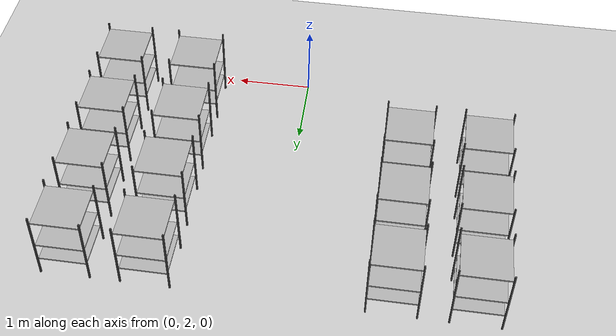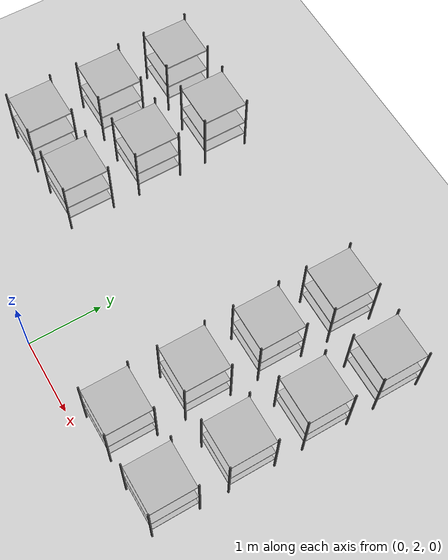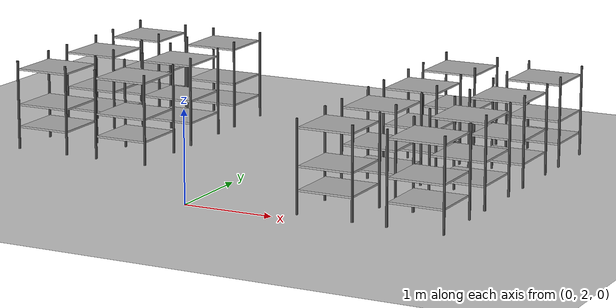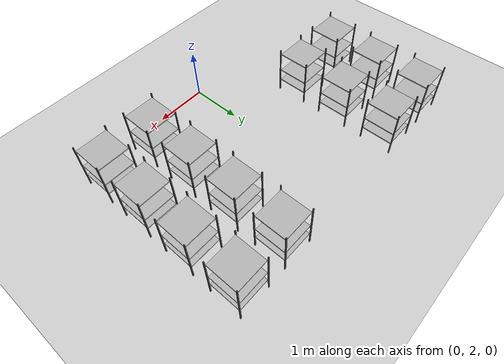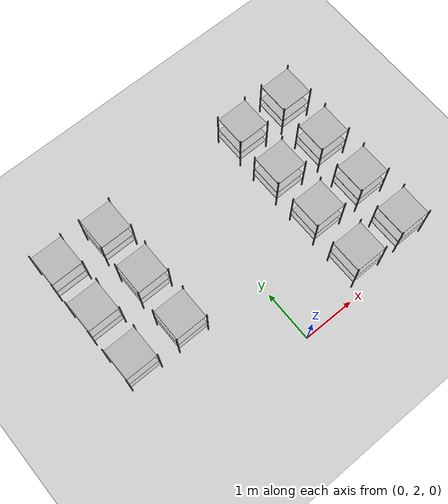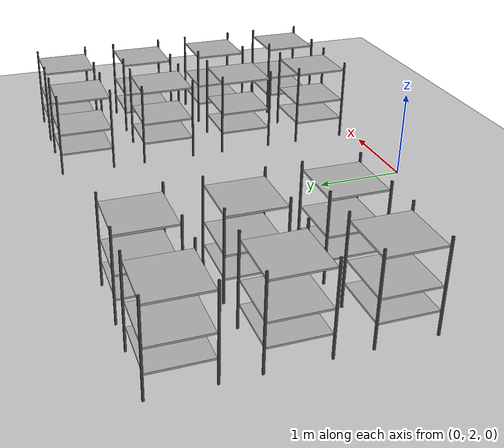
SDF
<sdf version="1.7">
 <world name="default">
  <model name="ground_plane">
   <static>1</static>
   <link name="link">
    <collision name="collision">
     <geometry><plane><normal>0 0 1</normal><size>100 100</size></plane></geometry>
     <surface><friction><ode><mu>100</mu><mu2>50</mu2></ode></friction></surface>
    </collision>
    <visual name="visual">
     <cast_shadows>0</cast_shadows>
     <geometry><plane><normal>0 0 1</normal><size>100 100</size></plane></geometry>
     <material>
      <script><uri>file://media/materials/scripts/gazebo.material</uri><name>Gazebo/Grey</name></script>
     </material>
    </visual>
   </link>
  </model>
  <model name="simple_shelf_4">
   <link name="link">
    <visual name="bottom_shelf_visual">
     <geometry><box><size>0.6 0.6 0.02</size></box></geometry>
     <pose>0 0 0.25 0 -0 0</pose>
     <material><ambient>0.6 0.6 0.6 1</ambient><diffuse>0.7 0.7 0.7 1</diffuse></material>
    </visual>
    <collision name="bottom_shelf_collision">
     <geometry><box><size>0.6 0.6 0.02</size></box></geometry>
     <pose>0 0 0.25 0 -0 0</pose>
    </collision>
    <visual name="middle_shelf_visual">
     <geometry><box><size>0.6 0.6 0.02</size></box></geometry>
     <pose>0 0 0.5 0 -0 0</pose>
     <material><ambient>0.6 0.6 0.6 1</ambient><diffuse>0.7 0.7 0.7 1</diffuse></material>
    </visual>
    <collision name="middle_shelf_collision">
     <geometry><box><size>0.6 0.6 0.02</size></box></geometry>
     <pose>0 0 0.5 0 -0 0</pose>
    </collision>
    <visual name="top_shelf_visual">
     <geometry><box><size>0.6 0.6 0.02</size></box></geometry>
     <pose>0 0 0.9 0 -0 0</pose>
     <material><ambient>0.6 0.6 0.6 1</ambient><diffuse>0.7 0.7 0.7 1</diffuse></material>
    </visual>
    <collision name="top_shelf_collision">
     <geometry><box><size>0.6 0.6 0.02</size></box></geometry>
     <pose>0 0 0.9 0 -0 0</pose>
    </collision>
    <visual name="left_support_visual">
     <geometry><box><size>0.02 0.02 1</size></box></geometry>
     <pose>-0.31 -0.31 0.5 0 -0 0</pose>
     <material><ambient>0.3 0.3 0.3 1</ambient><diffuse>0.3 0.3 0.3 1</diffuse></material>
    </visual>
    <collision name="left_support_collision">
     <geometry><box><size>0.02 0.02 1</size></box></geometry>
     <pose>-0.31 -0.31 0.5 0 -0 0</pose>
    </collision>
    <visual name="right_support_visual">
     <geometry><box><size>0.02 0.02 1</size></box></geometry>
     <pose>0.31 -0.31 0.5 0 -0 0</pose>
     <material><ambient>0.3 0.3 0.3 1</ambient><diffuse>0.3 0.3 0.3 1</diffuse></material>
    </visual>
    <collision name="right_support_collision">
     <geometry><box><size>0.02 0.02 1</size></box></geometry>
     <pose>0.31 -0.31 0.5 0 -0 0</pose>
    </collision>
    <visual name="front_left_support_visual">
     <geometry><box><size>0.02 0.02 1</size></box></geometry>
     <pose>-0.31 0.31 0.5 0 -0 0</pose>
     <material><ambient>0.3 0.3 0.3 1</ambient><diffuse>0.3 0.3 0.3 1</diffuse></material>
    </visual>
    <collision name="front_left_support_collision">
     <geometry><box><size>0.02 0.02 1</size></box></geometry>
     <pose>-0.31 0.31 0.5 0 -0 0</pose>
    </collision>
    <visual name="front_right_support_visual">
     <geometry><box><size>0.02 0.02 1</size></box></geometry>
     <pose>0.31 0.31 0.5 0 -0 0</pose>
     <material><ambient>0.3 0.3 0.3 1</ambient><diffuse>0.3 0.3 0.3 1</diffuse></material>
    </visual>
    <collision name="front_right_support_collision">
     <geometry><box><size>0.02 0.02 1</size></box></geometry>
     <pose>0.31 0.31 0.5 0 -0 0</pose>
    </collision>
    <inertial>
     <inertia><ixx>1</ixx><ixy>0</ixy><ixz>0</ixz><iyy>1</iyy><iyz>0</iyz><izz>1</izz></inertia>
     <mass>1</mass>
    </inertial>
   </link>
   <pose>-1.5 3.5 -1e-06 -1e-06 -1e-06 0</pose>
  </model>
  <model name="simple_shelf_5">
   <link name="link">
    <visual name="bottom_shelf_visual">
     <geometry><box><size>0.6 0.6 0.02</size></box></geometry>
     <pose>0 0 0.25 0 -0 0</pose>
     <material><ambient>0.6 0.6 0.6 1</ambient><diffuse>0.7 0.7 0.7 1</diffuse></material>
    </visual>
    <collision name="bottom_shelf_collision">
     <geometry><box><size>0.6 0.6 0.02</size></box></geometry>
     <pose>0 0 0.25 0 -0 0</pose>
    </collision>
    <visual name="middle_shelf_visual">
     <geometry><box><size>0.6 0.6 0.02</size></box></geometry>
     <pose>0 0 0.5 0 -0 0</pose>
     <material><ambient>0.6 0.6 0.6 1</ambient><diffuse>0.7 0.7 0.7 1</diffuse></material>
    </visual>
    <collision name="middle_shelf_collision">
     <geometry><box><size>0.6 0.6 0.02</size></box></geometry>
     <pose>0 0 0.5 0 -0 0</pose>
    </collision>
    <visual name="top_shelf_visual">
     <geometry><box><size>0.6 0.6 0.02</size></box></geometry>
     <pose>0 0 0.9 0 -0 0</pose>
     <material><ambient>0.6 0.6 0.6 1</ambient><diffuse>0.7 0.7 0.7 1</diffuse></material>
    </visual>
    <collision name="top_shelf_collision">
     <geometry><box><size>0.6 0.6 0.02</size></box></geometry>
     <pose>0 0 0.9 0 -0 0</pose>
    </collision>
    <visual name="left_support_visual">
     <geometry><box><size>0.02 0.02 1</size></box></geometry>
     <pose>-0.31 -0.31 0.5 0 -0 0</pose>
     <material><ambient>0.3 0.3 0.3 1</ambient><diffuse>0.3 0.3 0.3 1</diffuse></material>
    </visual>
    <collision name="left_support_collision">
     <geometry><box><size>0.02 0.02 1</size></box></geometry>
     <pose>-0.31 -0.31 0.5 0 -0 0</pose>
    </collision>
    <visual name="right_support_visual">
     <geometry><box><size>0.02 0.02 1</size></box></geometry>
     <pose>0.31 -0.31 0.5 0 -0 0</pose>
     <material><ambient>0.3 0.3 0.3 1</ambient><diffuse>0.3 0.3 0.3 1</diffuse></material>
    </visual>
    <collision name="right_support_collision">
     <geometry><box><size>0.02 0.02 1</size></box></geometry>
     <pose>0.31 -0.31 0.5 0 -0 0</pose>
    </collision>
    <visual name="front_left_support_visual">
     <geometry><box><size>0.02 0.02 1</size></box></geometry>
     <pose>-0.31 0.31 0.5 0 -0 0</pose>
     <material><ambient>0.3 0.3 0.3 1</ambient><diffuse>0.3 0.3 0.3 1</diffuse></material>
    </visual>
    <collision name="front_left_support_collision">
     <geometry><box><size>0.02 0.02 1</size></box></geometry>
     <pose>-0.31 0.31 0.5 0 -0 0</pose>
    </collision>
    <visual name="front_right_support_visual">
     <geometry><box><size>0.02 0.02 1</size></box></geometry>
     <pose>0.31 0.31 0.5 0 -0 0</pose>
     <material><ambient>0.3 0.3 0.3 1</ambient><diffuse>0.3 0.3 0.3 1</diffuse></material>
    </visual>
    <collision name="front_right_support_collision">
     <geometry><box><size>0.02 0.02 1</size></box></geometry>
     <pose>0.31 0.31 0.5 0 -0 0</pose>
    </collision>
    <inertial>
     <inertia><ixx>1</ixx><ixy>0</ixy><ixz>0</ixz><iyy>1</iyy><iyz>0</iyz><izz>1</izz></inertia>
     <mass>1</mass>
    </inertial>
   </link>
   <pose>-1.5 4.5 -1e-06 -1e-06 -1e-06 0</pose>
  </model>
  <model name="simple_shelf_6">
   <link name="link">
    <visual name="bottom_shelf_visual">
     <geometry><box><size>0.6 0.6 0.02</size></box></geometry>
     <pose>0 0 0.25 0 -0 0</pose>
     <material><ambient>0.6 0.6 0.6 1</ambient><diffuse>0.7 0.7 0.7 1</diffuse></material>
    </visual>
    <collision name="bottom_shelf_collision">
     <geometry><box><size>0.6 0.6 0.02</size></box></geometry>
     <pose>0 0 0.25 0 -0 0</pose>
    </collision>
    <visual name="middle_shelf_visual">
     <geometry><box><size>0.6 0.6 0.02</size></box></geometry>
     <pose>0 0 0.5 0 -0 0</pose>
     <material><ambient>0.6 0.6 0.6 1</ambient><diffuse>0.7 0.7 0.7 1</diffuse></material>
    </visual>
    <collision name="middle_shelf_collision">
     <geometry><box><size>0.6 0.6 0.02</size></box></geometry>
     <pose>0 0 0.5 0 -0 0</pose>
    </collision>
    <visual name="top_shelf_visual">
     <geometry><box><size>0.6 0.6 0.02</size></box></geometry>
     <pose>0 0 0.9 0 -0 0</pose>
     <material><ambient>0.6 0.6 0.6 1</ambient><diffuse>0.7 0.7 0.7 1</diffuse></material>
    </visual>
    <collision name="top_shelf_collision">
     <geometry><box><size>0.6 0.6 0.02</size></box></geometry>
     <pose>0 0 0.9 0 -0 0</pose>
    </collision>
    <visual name="left_support_visual">
     <geometry><box><size>0.02 0.02 1</size></box></geometry>
     <pose>-0.31 -0.31 0.5 0 -0 0</pose>
     <material><ambient>0.3 0.3 0.3 1</ambient><diffuse>0.3 0.3 0.3 1</diffuse></material>
    </visual>
    <collision name="left_support_collision">
     <geometry><box><size>0.02 0.02 1</size></box></geometry>
     <pose>-0.31 -0.31 0.5 0 -0 0</pose>
    </collision>
    <visual name="right_support_visual">
     <geometry><box><size>0.02 0.02 1</size></box></geometry>
     <pose>0.31 -0.31 0.5 0 -0 0</pose>
     <material><ambient>0.3 0.3 0.3 1</ambient><diffuse>0.3 0.3 0.3 1</diffuse></material>
    </visual>
    <collision name="right_support_collision">
     <geometry><box><size>0.02 0.02 1</size></box></geometry>
     <pose>0.31 -0.31 0.5 0 -0 0</pose>
    </collision>
    <visual name="front_left_support_visual">
     <geometry><box><size>0.02 0.02 1</size></box></geometry>
     <pose>-0.31 0.31 0.5 0 -0 0</pose>
     <material><ambient>0.3 0.3 0.3 1</ambient><diffuse>0.3 0.3 0.3 1</diffuse></material>
    </visual>
    <collision name="front_left_support_collision">
     <geometry><box><size>0.02 0.02 1</size></box></geometry>
     <pose>-0.31 0.31 0.5 0 -0 0</pose>
    </collision>
    <visual name="front_right_support_visual">
     <geometry><box><size>0.02 0.02 1</size></box></geometry>
     <pose>0.31 0.31 0.5 0 -0 0</pose>
     <material><ambient>0.3 0.3 0.3 1</ambient><diffuse>0.3 0.3 0.3 1</diffuse></material>
    </visual>
    <collision name="front_right_support_collision">
     <geometry><box><size>0.02 0.02 1</size></box></geometry>
     <pose>0.31 0.31 0.5 0 -0 0</pose>
    </collision>
    <inertial>
     <inertia><ixx>1</ixx><ixy>0</ixy><ixz>0</ixz><iyy>1</iyy><iyz>0</iyz><izz>1</izz></inertia>
     <mass>1</mass>
    </inertial>
   </link>
   <pose>-1.5 5.5 -1e-06 -1e-06 -1e-06 0</pose>
  </model>
  <model name="simple_shelf_8">
   <link name="link">
    <visual name="bottom_shelf_visual">
     <geometry><box><size>0.6 0.6 0.02</size></box></geometry>
     <pose>0 0 0.25 0 -0 0</pose>
     <material><ambient>0.6 0.6 0.6 1</ambient><diffuse>0.7 0.7 0.7 1</diffuse></material>
    </visual>
    <collision name="bottom_shelf_collision">
     <geometry><box><size>0.6 0.6 0.02</size></box></geometry>
     <pose>0 0 0.25 0 -0 0</pose>
    </collision>
    <visual name="middle_shelf_visual">
     <geometry><box><size>0.6 0.6 0.02</size></box></geometry>
     <pose>0 0 0.5 0 -0 0</pose>
     <material><ambient>0.6 0.6 0.6 1</ambient><diffuse>0.7 0.7 0.7 1</diffuse></material>
    </visual>
    <collision name="middle_shelf_collision">
     <geometry><box><size>0.6 0.6 0.02</size></box></geometry>
     <pose>0 0 0.5 0 -0 0</pose>
    </collision>
    <visual name="top_shelf_visual">
     <geometry><box><size>0.6 0.6 0.02</size></box></geometry>
     <pose>0 0 0.9 0 -0 0</pose>
     <material><ambient>0.6 0.6 0.6 1</ambient><diffuse>0.7 0.7 0.7 1</diffuse></material>
    </visual>
    <collision name="top_shelf_collision">
     <geometry><box><size>0.6 0.6 0.02</size></box></geometry>
     <pose>0 0 0.9 0 -0 0</pose>
    </collision>
    <visual name="left_support_visual">
     <geometry><box><size>0.02 0.02 1</size></box></geometry>
     <pose>-0.31 -0.31 0.5 0 -0 0</pose>
     <material><ambient>0.3 0.3 0.3 1</ambient><diffuse>0.3 0.3 0.3 1</diffuse></material>
    </visual>
    <collision name="left_support_collision">
     <geometry><box><size>0.02 0.02 1</size></box></geometry>
     <pose>-0.31 -0.31 0.5 0 -0 0</pose>
    </collision>
    <visual name="right_support_visual">
     <geometry><box><size>0.02 0.02 1</size></box></geometry>
     <pose>0.31 -0.31 0.5 0 -0 0</pose>
     <material><ambient>0.3 0.3 0.3 1</ambient><diffuse>0.3 0.3 0.3 1</diffuse></material>
    </visual>
    <collision name="right_support_collision">
     <geometry><box><size>0.02 0.02 1</size></box></geometry>
     <pose>0.31 -0.31 0.5 0 -0 0</pose>
    </collision>
    <visual name="front_left_support_visual">
     <geometry><box><size>0.02 0.02 1</size></box></geometry>
     <pose>-0.31 0.31 0.5 0 -0 0</pose>
     <material><ambient>0.3 0.3 0.3 1</ambient><diffuse>0.3 0.3 0.3 1</diffuse></material>
    </visual>
    <collision name="front_left_support_collision">
     <geometry><box><size>0.02 0.02 1</size></box></geometry>
     <pose>-0.31 0.31 0.5 0 -0 0</pose>
    </collision>
    <visual name="front_right_support_visual">
     <geometry><box><size>0.02 0.02 1</size></box></geometry>
     <pose>0.31 0.31 0.5 0 -0 0</pose>
     <material><ambient>0.3 0.3 0.3 1</ambient><diffuse>0.3 0.3 0.3 1</diffuse></material>
    </visual>
    <collision name="front_right_support_collision">
     <geometry><box><size>0.02 0.02 1</size></box></geometry>
     <pose>0.31 0.31 0.5 0 -0 0</pose>
    </collision>
    <inertial>
     <inertia><ixx>1</ixx><ixy>0</ixy><ixz>0</ixz><iyy>1</iyy><iyz>0</iyz><izz>1</izz></inertia>
     <mass>1</mass>
    </inertial>
   </link>
   <pose>-2.5 3.5 -1e-06 -1e-06 -1e-06 0</pose>
  </model>
  <model name="simple_shelf_9">
   <link name="link">
    <visual name="bottom_shelf_visual">
     <geometry><box><size>0.6 0.6 0.02</size></box></geometry>
     <pose>0 0 0.25 0 -0 0</pose>
     <material><ambient>0.6 0.6 0.6 1</ambient><diffuse>0.7 0.7 0.7 1</diffuse></material>
    </visual>
    <collision name="bottom_shelf_collision">
     <geometry><box><size>0.6 0.6 0.02</size></box></geometry>
     <pose>0 0 0.25 0 -0 0</pose>
    </collision>
    <visual name="middle_shelf_visual">
     <geometry><box><size>0.6 0.6 0.02</size></box></geometry>
     <pose>0 0 0.5 0 -0 0</pose>
     <material><ambient>0.6 0.6 0.6 1</ambient><diffuse>0.7 0.7 0.7 1</diffuse></material>
    </visual>
    <collision name="middle_shelf_collision">
     <geometry><box><size>0.6 0.6 0.02</size></box></geometry>
     <pose>0 0 0.5 0 -0 0</pose>
    </collision>
    <visual name="top_shelf_visual">
     <geometry><box><size>0.6 0.6 0.02</size></box></geometry>
     <pose>0 0 0.9 0 -0 0</pose>
     <material><ambient>0.6 0.6 0.6 1</ambient><diffuse>0.7 0.7 0.7 1</diffuse></material>
    </visual>
    <collision name="top_shelf_collision">
     <geometry><box><size>0.6 0.6 0.02</size></box></geometry>
     <pose>0 0 0.9 0 -0 0</pose>
    </collision>
    <visual name="left_support_visual">
     <geometry><box><size>0.02 0.02 1</size></box></geometry>
     <pose>-0.31 -0.31 0.5 0 -0 0</pose>
     <material><ambient>0.3 0.3 0.3 1</ambient><diffuse>0.3 0.3 0.3 1</diffuse></material>
    </visual>
    <collision name="left_support_collision">
     <geometry><box><size>0.02 0.02 1</size></box></geometry>
     <pose>-0.31 -0.31 0.5 0 -0 0</pose>
    </collision>
    <visual name="right_support_visual">
     <geometry><box><size>0.02 0.02 1</size></box></geometry>
     <pose>0.31 -0.31 0.5 0 -0 0</pose>
     <material><ambient>0.3 0.3 0.3 1</ambient><diffuse>0.3 0.3 0.3 1</diffuse></material>
    </visual>
    <collision name="right_support_collision">
     <geometry><box><size>0.02 0.02 1</size></box></geometry>
     <pose>0.31 -0.31 0.5 0 -0 0</pose>
    </collision>
    <visual name="front_left_support_visual">
     <geometry><box><size>0.02 0.02 1</size></box></geometry>
     <pose>-0.31 0.31 0.5 0 -0 0</pose>
     <material><ambient>0.3 0.3 0.3 1</ambient><diffuse>0.3 0.3 0.3 1</diffuse></material>
    </visual>
    <collision name="front_left_support_collision">
     <geometry><box><size>0.02 0.02 1</size></box></geometry>
     <pose>-0.31 0.31 0.5 0 -0 0</pose>
    </collision>
    <visual name="front_right_support_visual">
     <geometry><box><size>0.02 0.02 1</size></box></geometry>
     <pose>0.31 0.31 0.5 0 -0 0</pose>
     <material><ambient>0.3 0.3 0.3 1</ambient><diffuse>0.3 0.3 0.3 1</diffuse></material>
    </visual>
    <collision name="front_right_support_collision">
     <geometry><box><size>0.02 0.02 1</size></box></geometry>
     <pose>0.31 0.31 0.5 0 -0 0</pose>
    </collision>
    <inertial>
     <inertia><ixx>1</ixx><ixy>0</ixy><ixz>0</ixz><iyy>1</iyy><iyz>0</iyz><izz>1</izz></inertia>
     <mass>1</mass>
    </inertial>
   </link>
   <pose>-2.5 4.5 -1e-06 -1e-06 -1e-06 0</pose>
  </model>
  <model name="simple_shelf_10">
   <link name="link">
    <visual name="bottom_shelf_visual">
     <geometry><box><size>0.6 0.6 0.02</size></box></geometry>
     <pose>0 0 0.25 0 -0 0</pose>
     <material><ambient>0.6 0.6 0.6 1</ambient><diffuse>0.7 0.7 0.7 1</diffuse></material>
    </visual>
    <collision name="bottom_shelf_collision">
     <geometry><box><size>0.6 0.6 0.02</size></box></geometry>
     <pose>0 0 0.25 0 -0 0</pose>
    </collision>
    <visual name="middle_shelf_visual">
     <geometry><box><size>0.6 0.6 0.02</size></box></geometry>
     <pose>0 0 0.5 0 -0 0</pose>
     <material><ambient>0.6 0.6 0.6 1</ambient><diffuse>0.7 0.7 0.7 1</diffuse></material>
    </visual>
    <collision name="middle_shelf_collision">
     <geometry><box><size>0.6 0.6 0.02</size></box></geometry>
     <pose>0 0 0.5 0 -0 0</pose>
    </collision>
    <visual name="top_shelf_visual">
     <geometry><box><size>0.6 0.6 0.02</size></box></geometry>
     <pose>0 0 0.9 0 -0 0</pose>
     <material><ambient>0.6 0.6 0.6 1</ambient><diffuse>0.7 0.7 0.7 1</diffuse></material>
    </visual>
    <collision name="top_shelf_collision">
     <geometry><box><size>0.6 0.6 0.02</size></box></geometry>
     <pose>0 0 0.9 0 -0 0</pose>
    </collision>
    <visual name="left_support_visual">
     <geometry><box><size>0.02 0.02 1</size></box></geometry>
     <pose>-0.31 -0.31 0.5 0 -0 0</pose>
     <material><ambient>0.3 0.3 0.3 1</ambient><diffuse>0.3 0.3 0.3 1</diffuse></material>
    </visual>
    <collision name="left_support_collision">
     <geometry><box><size>0.02 0.02 1</size></box></geometry>
     <pose>-0.31 -0.31 0.5 0 -0 0</pose>
    </collision>
    <visual name="right_support_visual">
     <geometry><box><size>0.02 0.02 1</size></box></geometry>
     <pose>0.31 -0.31 0.5 0 -0 0</pose>
     <material><ambient>0.3 0.3 0.3 1</ambient><diffuse>0.3 0.3 0.3 1</diffuse></material>
    </visual>
    <collision name="right_support_collision">
     <geometry><box><size>0.02 0.02 1</size></box></geometry>
     <pose>0.31 -0.31 0.5 0 -0 0</pose>
    </collision>
    <visual name="front_left_support_visual">
     <geometry><box><size>0.02 0.02 1</size></box></geometry>
     <pose>-0.31 0.31 0.5 0 -0 0</pose>
     <material><ambient>0.3 0.3 0.3 1</ambient><diffuse>0.3 0.3 0.3 1</diffuse></material>
    </visual>
    <collision name="front_left_support_collision">
     <geometry><box><size>0.02 0.02 1</size></box></geometry>
     <pose>-0.31 0.31 0.5 0 -0 0</pose>
    </collision>
    <visual name="front_right_support_visual">
     <geometry><box><size>0.02 0.02 1</size></box></geometry>
     <pose>0.31 0.31 0.5 0 -0 0</pose>
     <material><ambient>0.3 0.3 0.3 1</ambient><diffuse>0.3 0.3 0.3 1</diffuse></material>
    </visual>
    <collision name="front_right_support_collision">
     <geometry><box><size>0.02 0.02 1</size></box></geometry>
     <pose>0.31 0.31 0.5 0 -0 0</pose>
    </collision>
    <inertial>
     <inertia><ixx>1</ixx><ixy>0</ixy><ixz>0</ixz><iyy>1</iyy><iyz>0</iyz><izz>1</izz></inertia>
     <mass>1</mass>
    </inertial>
   </link>
   <pose>-2.5 5.5 -1e-06 -1e-06 -1e-06 0</pose>
  </model>
  <model name="simple_shelf_11">
   <link name="link">
    <visual name="bottom_shelf_visual">
     <geometry><box><size>0.6 0.6 0.02</size></box></geometry>
     <pose>0 0 0.25 0 -0 0</pose>
     <material><ambient>0.6 0.6 0.6 1</ambient><diffuse>0.7 0.7 0.7 1</diffuse></material>
    </visual>
    <collision name="bottom_shelf_collision">
     <geometry><box><size>0.6 0.6 0.02</size></box></geometry>
     <pose>0 0 0.25 0 -0 0</pose>
    </collision>
    <visual name="middle_shelf_visual">
     <geometry><box><size>0.6 0.6 0.02</size></box></geometry>
     <pose>0 0 0.5 0 -0 0</pose>
     <material><ambient>0.6 0.6 0.6 1</ambient><diffuse>0.7 0.7 0.7 1</diffuse></material>
    </visual>
    <collision name="middle_shelf_collision">
     <geometry><box><size>0.6 0.6 0.02</size></box></geometry>
     <pose>0 0 0.5 0 -0 0</pose>
    </collision>
    <visual name="top_shelf_visual">
     <geometry><box><size>0.6 0.6 0.02</size></box></geometry>
     <pose>0 0 0.9 0 -0 0</pose>
     <material><ambient>0.6 0.6 0.6 1</ambient><diffuse>0.7 0.7 0.7 1</diffuse></material>
    </visual>
    <collision name="top_shelf_collision">
     <geometry><box><size>0.6 0.6 0.02</size></box></geometry>
     <pose>0 0 0.9 0 -0 0</pose>
    </collision>
    <visual name="left_support_visual">
     <geometry><box><size>0.02 0.02 1</size></box></geometry>
     <pose>-0.31 -0.31 0.5 0 -0 0</pose>
     <material><ambient>0.3 0.3 0.3 1</ambient><diffuse>0.3 0.3 0.3 1</diffuse></material>
    </visual>
    <collision name="left_support_collision">
     <geometry><box><size>0.02 0.02 1</size></box></geometry>
     <pose>-0.31 -0.31 0.5 0 -0 0</pose>
    </collision>
    <visual name="right_support_visual">
     <geometry><box><size>0.02 0.02 1</size></box></geometry>
     <pose>0.31 -0.31 0.5 0 -0 0</pose>
     <material><ambient>0.3 0.3 0.3 1</ambient><diffuse>0.3 0.3 0.3 1</diffuse></material>
    </visual>
    <collision name="right_support_collision">
     <geometry><box><size>0.02 0.02 1</size></box></geometry>
     <pose>0.31 -0.31 0.5 0 -0 0</pose>
    </collision>
    <visual name="front_left_support_visual">
     <geometry><box><size>0.02 0.02 1</size></box></geometry>
     <pose>-0.31 0.31 0.5 0 -0 0</pose>
     <material><ambient>0.3 0.3 0.3 1</ambient><diffuse>0.3 0.3 0.3 1</diffuse></material>
    </visual>
    <collision name="front_left_support_collision">
     <geometry><box><size>0.02 0.02 1</size></box></geometry>
     <pose>-0.31 0.31 0.5 0 -0 0</pose>
    </collision>
    <visual name="front_right_support_visual">
     <geometry><box><size>0.02 0.02 1</size></box></geometry>
     <pose>0.31 0.31 0.5 0 -0 0</pose>
     <material><ambient>0.3 0.3 0.3 1</ambient><diffuse>0.3 0.3 0.3 1</diffuse></material>
    </visual>
    <collision name="front_right_support_collision">
     <geometry><box><size>0.02 0.02 1</size></box></geometry>
     <pose>0.31 0.31 0.5 0 -0 0</pose>
    </collision>
    <inertial>
     <inertia><ixx>1</ixx><ixy>0</ixy><ixz>0</ixz><iyy>1</iyy><iyz>0</iyz><izz>1</izz></inertia>
     <mass>1</mass>
    </inertial>
   </link>
   <pose>1.5 2.5 -1e-06 -1e-06 -1e-06 0</pose>
  </model>
  <model name="simple_shelf_12">
   <link name="link">
    <visual name="bottom_shelf_visual">
     <geometry><box><size>0.6 0.6 0.02</size></box></geometry>
     <pose>0 0 0.25 0 -0 0</pose>
     <material><ambient>0.6 0.6 0.6 1</ambient><diffuse>0.7 0.7 0.7 1</diffuse></material>
    </visual>
    <collision name="bottom_shelf_collision">
     <geometry><box><size>0.6 0.6 0.02</size></box></geometry>
     <pose>0 0 0.25 0 -0 0</pose>
    </collision>
    <visual name="middle_shelf_visual">
     <geometry><box><size>0.6 0.6 0.02</size></box></geometry>
     <pose>0 0 0.5 0 -0 0</pose>
     <material><ambient>0.6 0.6 0.6 1</ambient><diffuse>0.7 0.7 0.7 1</diffuse></material>
    </visual>
    <collision name="middle_shelf_collision">
     <geometry><box><size>0.6 0.6 0.02</size></box></geometry>
     <pose>0 0 0.5 0 -0 0</pose>
    </collision>
    <visual name="top_shelf_visual">
     <geometry><box><size>0.6 0.6 0.02</size></box></geometry>
     <pose>0 0 0.9 0 -0 0</pose>
     <material><ambient>0.6 0.6 0.6 1</ambient><diffuse>0.7 0.7 0.7 1</diffuse></material>
    </visual>
    <collision name="top_shelf_collision">
     <geometry><box><size>0.6 0.6 0.02</size></box></geometry>
     <pose>0 0 0.9 0 -0 0</pose>
    </collision>
    <visual name="left_support_visual">
     <geometry><box><size>0.02 0.02 1</size></box></geometry>
     <pose>-0.31 -0.31 0.5 0 -0 0</pose>
     <material><ambient>0.3 0.3 0.3 1</ambient><diffuse>0.3 0.3 0.3 1</diffuse></material>
    </visual>
    <collision name="left_support_collision">
     <geometry><box><size>0.02 0.02 1</size></box></geometry>
     <pose>-0.31 -0.31 0.5 0 -0 0</pose>
    </collision>
    <visual name="right_support_visual">
     <geometry><box><size>0.02 0.02 1</size></box></geometry>
     <pose>0.31 -0.31 0.5 0 -0 0</pose>
     <material><ambient>0.3 0.3 0.3 1</ambient><diffuse>0.3 0.3 0.3 1</diffuse></material>
    </visual>
    <collision name="right_support_collision">
     <geometry><box><size>0.02 0.02 1</size></box></geometry>
     <pose>0.31 -0.31 0.5 0 -0 0</pose>
    </collision>
    <visual name="front_left_support_visual">
     <geometry><box><size>0.02 0.02 1</size></box></geometry>
     <pose>-0.31 0.31 0.5 0 -0 0</pose>
     <material><ambient>0.3 0.3 0.3 1</ambient><diffuse>0.3 0.3 0.3 1</diffuse></material>
    </visual>
    <collision name="front_left_support_collision">
     <geometry><box><size>0.02 0.02 1</size></box></geometry>
     <pose>-0.31 0.31 0.5 0 -0 0</pose>
    </collision>
    <visual name="front_right_support_visual">
     <geometry><box><size>0.02 0.02 1</size></box></geometry>
     <pose>0.31 0.31 0.5 0 -0 0</pose>
     <material><ambient>0.3 0.3 0.3 1</ambient><diffuse>0.3 0.3 0.3 1</diffuse></material>
    </visual>
    <collision name="front_right_support_collision">
     <geometry><box><size>0.02 0.02 1</size></box></geometry>
     <pose>0.31 0.31 0.5 0 -0 0</pose>
    </collision>
    <inertial>
     <inertia><ixx>1</ixx><ixy>0</ixy><ixz>0</ixz><iyy>1</iyy><iyz>0</iyz><izz>1</izz></inertia>
     <mass>1</mass>
    </inertial>
   </link>
   <pose>1.5 3.5 -1e-06 -1e-06 -1e-06 0</pose>
  </model>
  <model name="simple_shelf_13">
   <link name="link">
    <visual name="bottom_shelf_visual">
     <geometry><box><size>0.6 0.6 0.02</size></box></geometry>
     <pose>0 0 0.25 0 -0 0</pose>
     <material><ambient>0.6 0.6 0.6 1</ambient><diffuse>0.7 0.7 0.7 1</diffuse></material>
    </visual>
    <collision name="bottom_shelf_collision">
     <geometry><box><size>0.6 0.6 0.02</size></box></geometry>
     <pose>0 0 0.25 0 -0 0</pose>
    </collision>
    <visual name="middle_shelf_visual">
     <geometry><box><size>0.6 0.6 0.02</size></box></geometry>
     <pose>0 0 0.5 0 -0 0</pose>
     <material><ambient>0.6 0.6 0.6 1</ambient><diffuse>0.7 0.7 0.7 1</diffuse></material>
    </visual>
    <collision name="middle_shelf_collision">
     <geometry><box><size>0.6 0.6 0.02</size></box></geometry>
     <pose>0 0 0.5 0 -0 0</pose>
    </collision>
    <visual name="top_shelf_visual">
     <geometry><box><size>0.6 0.6 0.02</size></box></geometry>
     <pose>0 0 0.9 0 -0 0</pose>
     <material><ambient>0.6 0.6 0.6 1</ambient><diffuse>0.7 0.7 0.7 1</diffuse></material>
    </visual>
    <collision name="top_shelf_collision">
     <geometry><box><size>0.6 0.6 0.02</size></box></geometry>
     <pose>0 0 0.9 0 -0 0</pose>
    </collision>
    <visual name="left_support_visual">
     <geometry><box><size>0.02 0.02 1</size></box></geometry>
     <pose>-0.31 -0.31 0.5 0 -0 0</pose>
     <material><ambient>0.3 0.3 0.3 1</ambient><diffuse>0.3 0.3 0.3 1</diffuse></material>
    </visual>
    <collision name="left_support_collision">
     <geometry><box><size>0.02 0.02 1</size></box></geometry>
     <pose>-0.31 -0.31 0.5 0 -0 0</pose>
    </collision>
    <visual name="right_support_visual">
     <geometry><box><size>0.02 0.02 1</size></box></geometry>
     <pose>0.31 -0.31 0.5 0 -0 0</pose>
     <material><ambient>0.3 0.3 0.3 1</ambient><diffuse>0.3 0.3 0.3 1</diffuse></material>
    </visual>
    <collision name="right_support_collision">
     <geometry><box><size>0.02 0.02 1</size></box></geometry>
     <pose>0.31 -0.31 0.5 0 -0 0</pose>
    </collision>
    <visual name="front_left_support_visual">
     <geometry><box><size>0.02 0.02 1</size></box></geometry>
     <pose>-0.31 0.31 0.5 0 -0 0</pose>
     <material><ambient>0.3 0.3 0.3 1</ambient><diffuse>0.3 0.3 0.3 1</diffuse></material>
    </visual>
    <collision name="front_left_support_collision">
     <geometry><box><size>0.02 0.02 1</size></box></geometry>
     <pose>-0.31 0.31 0.5 0 -0 0</pose>
    </collision>
    <visual name="front_right_support_visual">
     <geometry><box><size>0.02 0.02 1</size></box></geometry>
     <pose>0.31 0.31 0.5 0 -0 0</pose>
     <material><ambient>0.3 0.3 0.3 1</ambient><diffuse>0.3 0.3 0.3 1</diffuse></material>
    </visual>
    <collision name="front_right_support_collision">
     <geometry><box><size>0.02 0.02 1</size></box></geometry>
     <pose>0.31 0.31 0.5 0 -0 0</pose>
    </collision>
    <inertial>
     <inertia><ixx>1</ixx><ixy>0</ixy><ixz>0</ixz><iyy>1</iyy><iyz>0</iyz><izz>1</izz></inertia>
     <mass>1</mass>
    </inertial>
   </link>
   <pose>1.5 4.5 -1e-06 -1e-06 -1e-06 0</pose>
  </model>
  <model name="simple_shelf_14">
   <link name="link">
    <visual name="bottom_shelf_visual">
     <geometry><box><size>0.6 0.6 0.02</size></box></geometry>
     <pose>0 0 0.25 0 -0 0</pose>
     <material><ambient>0.6 0.6 0.6 1</ambient><diffuse>0.7 0.7 0.7 1</diffuse></material>
    </visual>
    <collision name="bottom_shelf_collision">
     <geometry><box><size>0.6 0.6 0.02</size></box></geometry>
     <pose>0 0 0.25 0 -0 0</pose>
    </collision>
    <visual name="middle_shelf_visual">
     <geometry><box><size>0.6 0.6 0.02</size></box></geometry>
     <pose>0 0 0.5 0 -0 0</pose>
     <material><ambient>0.6 0.6 0.6 1</ambient><diffuse>0.7 0.7 0.7 1</diffuse></material>
    </visual>
    <collision name="middle_shelf_collision">
     <geometry><box><size>0.6 0.6 0.02</size></box></geometry>
     <pose>0 0 0.5 0 -0 0</pose>
    </collision>
    <visual name="top_shelf_visual">
     <geometry><box><size>0.6 0.6 0.02</size></box></geometry>
     <pose>0 0 0.9 0 -0 0</pose>
     <material><ambient>0.6 0.6 0.6 1</ambient><diffuse>0.7 0.7 0.7 1</diffuse></material>
    </visual>
    <collision name="top_shelf_collision">
     <geometry><box><size>0.6 0.6 0.02</size></box></geometry>
     <pose>0 0 0.9 0 -0 0</pose>
    </collision>
    <visual name="left_support_visual">
     <geometry><box><size>0.02 0.02 1</size></box></geometry>
     <pose>-0.31 -0.31 0.5 0 -0 0</pose>
     <material><ambient>0.3 0.3 0.3 1</ambient><diffuse>0.3 0.3 0.3 1</diffuse></material>
    </visual>
    <collision name="left_support_collision">
     <geometry><box><size>0.02 0.02 1</size></box></geometry>
     <pose>-0.31 -0.31 0.5 0 -0 0</pose>
    </collision>
    <visual name="right_support_visual">
     <geometry><box><size>0.02 0.02 1</size></box></geometry>
     <pose>0.31 -0.31 0.5 0 -0 0</pose>
     <material><ambient>0.3 0.3 0.3 1</ambient><diffuse>0.3 0.3 0.3 1</diffuse></material>
    </visual>
    <collision name="right_support_collision">
     <geometry><box><size>0.02 0.02 1</size></box></geometry>
     <pose>0.31 -0.31 0.5 0 -0 0</pose>
    </collision>
    <visual name="front_left_support_visual">
     <geometry><box><size>0.02 0.02 1</size></box></geometry>
     <pose>-0.31 0.31 0.5 0 -0 0</pose>
     <material><ambient>0.3 0.3 0.3 1</ambient><diffuse>0.3 0.3 0.3 1</diffuse></material>
    </visual>
    <collision name="front_left_support_collision">
     <geometry><box><size>0.02 0.02 1</size></box></geometry>
     <pose>-0.31 0.31 0.5 0 -0 0</pose>
    </collision>
    <visual name="front_right_support_visual">
     <geometry><box><size>0.02 0.02 1</size></box></geometry>
     <pose>0.31 0.31 0.5 0 -0 0</pose>
     <material><ambient>0.3 0.3 0.3 1</ambient><diffuse>0.3 0.3 0.3 1</diffuse></material>
    </visual>
    <collision name="front_right_support_collision">
     <geometry><box><size>0.02 0.02 1</size></box></geometry>
     <pose>0.31 0.31 0.5 0 -0 0</pose>
    </collision>
    <inertial>
     <inertia><ixx>1</ixx><ixy>0</ixy><ixz>0</ixz><iyy>1</iyy><iyz>0</iyz><izz>1</izz></inertia>
     <mass>1</mass>
    </inertial>
   </link>
   <pose>1.5 5.5 -1e-06 -1e-06 -1e-06 0</pose>
  </model>
  <model name="simple_shelf_15">
   <link name="link">
    <visual name="bottom_shelf_visual">
     <geometry><box><size>0.6 0.6 0.02</size></box></geometry>
     <pose>0 0 0.25 0 -0 0</pose>
     <material><ambient>0.6 0.6 0.6 1</ambient><diffuse>0.7 0.7 0.7 1</diffuse></material>
    </visual>
    <collision name="bottom_shelf_collision">
     <geometry><box><size>0.6 0.6 0.02</size></box></geometry>
     <pose>0 0 0.25 0 -0 0</pose>
    </collision>
    <visual name="middle_shelf_visual">
     <geometry><box><size>0.6 0.6 0.02</size></box></geometry>
     <pose>0 0 0.5 0 -0 0</pose>
     <material><ambient>0.6 0.6 0.6 1</ambient><diffuse>0.7 0.7 0.7 1</diffuse></material>
    </visual>
    <collision name="middle_shelf_collision">
     <geometry><box><size>0.6 0.6 0.02</size></box></geometry>
     <pose>0 0 0.5 0 -0 0</pose>
    </collision>
    <visual name="top_shelf_visual">
     <geometry><box><size>0.6 0.6 0.02</size></box></geometry>
     <pose>0 0 0.9 0 -0 0</pose>
     <material><ambient>0.6 0.6 0.6 1</ambient><diffuse>0.7 0.7 0.7 1</diffuse></material>
    </visual>
    <collision name="top_shelf_collision">
     <geometry><box><size>0.6 0.6 0.02</size></box></geometry>
     <pose>0 0 0.9 0 -0 0</pose>
    </collision>
    <visual name="left_support_visual">
     <geometry><box><size>0.02 0.02 1</size></box></geometry>
     <pose>-0.31 -0.31 0.5 0 -0 0</pose>
     <material><ambient>0.3 0.3 0.3 1</ambient><diffuse>0.3 0.3 0.3 1</diffuse></material>
    </visual>
    <collision name="left_support_collision">
     <geometry><box><size>0.02 0.02 1</size></box></geometry>
     <pose>-0.31 -0.31 0.5 0 -0 0</pose>
    </collision>
    <visual name="right_support_visual">
     <geometry><box><size>0.02 0.02 1</size></box></geometry>
     <pose>0.31 -0.31 0.5 0 -0 0</pose>
     <material><ambient>0.3 0.3 0.3 1</ambient><diffuse>0.3 0.3 0.3 1</diffuse></material>
    </visual>
    <collision name="right_support_collision">
     <geometry><box><size>0.02 0.02 1</size></box></geometry>
     <pose>0.31 -0.31 0.5 0 -0 0</pose>
    </collision>
    <visual name="front_left_support_visual">
     <geometry><box><size>0.02 0.02 1</size></box></geometry>
     <pose>-0.31 0.31 0.5 0 -0 0</pose>
     <material><ambient>0.3 0.3 0.3 1</ambient><diffuse>0.3 0.3 0.3 1</diffuse></material>
    </visual>
    <collision name="front_left_support_collision">
     <geometry><box><size>0.02 0.02 1</size></box></geometry>
     <pose>-0.31 0.31 0.5 0 -0 0</pose>
    </collision>
    <visual name="front_right_support_visual">
     <geometry><box><size>0.02 0.02 1</size></box></geometry>
     <pose>0.31 0.31 0.5 0 -0 0</pose>
     <material><ambient>0.3 0.3 0.3 1</ambient><diffuse>0.3 0.3 0.3 1</diffuse></material>
    </visual>
    <collision name="front_right_support_collision">
     <geometry><box><size>0.02 0.02 1</size></box></geometry>
     <pose>0.31 0.31 0.5 0 -0 0</pose>
    </collision>
    <inertial>
     <inertia><ixx>1</ixx><ixy>0</ixy><ixz>0</ixz><iyy>1</iyy><iyz>0</iyz><izz>1</izz></inertia>
     <mass>1</mass>
    </inertial>
   </link>
   <pose>2.5 2.5 -1e-06 -1e-06 -1e-06 0</pose>
  </model>
  <model name="simple_shelf_16">
   <link name="link">
    <visual name="bottom_shelf_visual">
     <geometry><box><size>0.6 0.6 0.02</size></box></geometry>
     <pose>0 0 0.25 0 -0 0</pose>
     <material><ambient>0.6 0.6 0.6 1</ambient><diffuse>0.7 0.7 0.7 1</diffuse></material>
    </visual>
    <collision name="bottom_shelf_collision">
     <geometry><box><size>0.6 0.6 0.02</size></box></geometry>
     <pose>0 0 0.25 0 -0 0</pose>
    </collision>
    <visual name="middle_shelf_visual">
     <geometry><box><size>0.6 0.6 0.02</size></box></geometry>
     <pose>0 0 0.5 0 -0 0</pose>
     <material><ambient>0.6 0.6 0.6 1</ambient><diffuse>0.7 0.7 0.7 1</diffuse></material>
    </visual>
    <collision name="middle_shelf_collision">
     <geometry><box><size>0.6 0.6 0.02</size></box></geometry>
     <pose>0 0 0.5 0 -0 0</pose>
    </collision>
    <visual name="top_shelf_visual">
     <geometry><box><size>0.6 0.6 0.02</size></box></geometry>
     <pose>0 0 0.9 0 -0 0</pose>
     <material><ambient>0.6 0.6 0.6 1</ambient><diffuse>0.7 0.7 0.7 1</diffuse></material>
    </visual>
    <collision name="top_shelf_collision">
     <geometry><box><size>0.6 0.6 0.02</size></box></geometry>
     <pose>0 0 0.9 0 -0 0</pose>
    </collision>
    <visual name="left_support_visual">
     <geometry><box><size>0.02 0.02 1</size></box></geometry>
     <pose>-0.31 -0.31 0.5 0 -0 0</pose>
     <material><ambient>0.3 0.3 0.3 1</ambient><diffuse>0.3 0.3 0.3 1</diffuse></material>
    </visual>
    <collision name="left_support_collision">
     <geometry><box><size>0.02 0.02 1</size></box></geometry>
     <pose>-0.31 -0.31 0.5 0 -0 0</pose>
    </collision>
    <visual name="right_support_visual">
     <geometry><box><size>0.02 0.02 1</size></box></geometry>
     <pose>0.31 -0.31 0.5 0 -0 0</pose>
     <material><ambient>0.3 0.3 0.3 1</ambient><diffuse>0.3 0.3 0.3 1</diffuse></material>
    </visual>
    <collision name="right_support_collision">
     <geometry><box><size>0.02 0.02 1</size></box></geometry>
     <pose>0.31 -0.31 0.5 0 -0 0</pose>
    </collision>
    <visual name="front_left_support_visual">
     <geometry><box><size>0.02 0.02 1</size></box></geometry>
     <pose>-0.31 0.31 0.5 0 -0 0</pose>
     <material><ambient>0.3 0.3 0.3 1</ambient><diffuse>0.3 0.3 0.3 1</diffuse></material>
    </visual>
    <collision name="front_left_support_collision">
     <geometry><box><size>0.02 0.02 1</size></box></geometry>
     <pose>-0.31 0.31 0.5 0 -0 0</pose>
    </collision>
    <visual name="front_right_support_visual">
     <geometry><box><size>0.02 0.02 1</size></box></geometry>
     <pose>0.31 0.31 0.5 0 -0 0</pose>
     <material><ambient>0.3 0.3 0.3 1</ambient><diffuse>0.3 0.3 0.3 1</diffuse></material>
    </visual>
    <collision name="front_right_support_collision">
     <geometry><box><size>0.02 0.02 1</size></box></geometry>
     <pose>0.31 0.31 0.5 0 -0 0</pose>
    </collision>
    <inertial>
     <inertia><ixx>1</ixx><ixy>0</ixy><ixz>0</ixz><iyy>1</iyy><iyz>0</iyz><izz>1</izz></inertia>
     <mass>1</mass>
    </inertial>
   </link>
   <pose>2.5 3.5 -1e-06 -1e-06 -1e-06 0</pose>
  </model>
  <model name="simple_shelf_17">
   <link name="link">
    <visual name="bottom_shelf_visual">
     <geometry><box><size>0.6 0.6 0.02</size></box></geometry>
     <pose>0 0 0.25 0 -0 0</pose>
     <material><ambient>0.6 0.6 0.6 1</ambient><diffuse>0.7 0.7 0.7 1</diffuse></material>
    </visual>
    <collision name="bottom_shelf_collision">
     <geometry><box><size>0.6 0.6 0.02</size></box></geometry>
     <pose>0 0 0.25 0 -0 0</pose>
    </collision>
    <visual name="middle_shelf_visual">
     <geometry><box><size>0.6 0.6 0.02</size></box></geometry>
     <pose>0 0 0.5 0 -0 0</pose>
     <material><ambient>0.6 0.6 0.6 1</ambient><diffuse>0.7 0.7 0.7 1</diffuse></material>
    </visual>
    <collision name="middle_shelf_collision">
     <geometry><box><size>0.6 0.6 0.02</size></box></geometry>
     <pose>0 0 0.5 0 -0 0</pose>
    </collision>
    <visual name="top_shelf_visual">
     <geometry><box><size>0.6 0.6 0.02</size></box></geometry>
     <pose>0 0 0.9 0 -0 0</pose>
     <material><ambient>0.6 0.6 0.6 1</ambient><diffuse>0.7 0.7 0.7 1</diffuse></material>
    </visual>
    <collision name="top_shelf_collision">
     <geometry><box><size>0.6 0.6 0.02</size></box></geometry>
     <pose>0 0 0.9 0 -0 0</pose>
    </collision>
    <visual name="left_support_visual">
     <geometry><box><size>0.02 0.02 1</size></box></geometry>
     <pose>-0.31 -0.31 0.5 0 -0 0</pose>
     <material><ambient>0.3 0.3 0.3 1</ambient><diffuse>0.3 0.3 0.3 1</diffuse></material>
    </visual>
    <collision name="left_support_collision">
     <geometry><box><size>0.02 0.02 1</size></box></geometry>
     <pose>-0.31 -0.31 0.5 0 -0 0</pose>
    </collision>
    <visual name="right_support_visual">
     <geometry><box><size>0.02 0.02 1</size></box></geometry>
     <pose>0.31 -0.31 0.5 0 -0 0</pose>
     <material><ambient>0.3 0.3 0.3 1</ambient><diffuse>0.3 0.3 0.3 1</diffuse></material>
    </visual>
    <collision name="right_support_collision">
     <geometry><box><size>0.02 0.02 1</size></box></geometry>
     <pose>0.31 -0.31 0.5 0 -0 0</pose>
    </collision>
    <visual name="front_left_support_visual">
     <geometry><box><size>0.02 0.02 1</size></box></geometry>
     <pose>-0.31 0.31 0.5 0 -0 0</pose>
     <material><ambient>0.3 0.3 0.3 1</ambient><diffuse>0.3 0.3 0.3 1</diffuse></material>
    </visual>
    <collision name="front_left_support_collision">
     <geometry><box><size>0.02 0.02 1</size></box></geometry>
     <pose>-0.31 0.31 0.5 0 -0 0</pose>
    </collision>
    <visual name="front_right_support_visual">
     <geometry><box><size>0.02 0.02 1</size></box></geometry>
     <pose>0.31 0.31 0.5 0 -0 0</pose>
     <material><ambient>0.3 0.3 0.3 1</ambient><diffuse>0.3 0.3 0.3 1</diffuse></material>
    </visual>
    <collision name="front_right_support_collision">
     <geometry><box><size>0.02 0.02 1</size></box></geometry>
     <pose>0.31 0.31 0.5 0 -0 0</pose>
    </collision>
    <inertial>
     <inertia><ixx>1</ixx><ixy>0</ixy><ixz>0</ixz><iyy>1</iyy><iyz>0</iyz><izz>1</izz></inertia>
     <mass>1</mass>
    </inertial>
   </link>
   <pose>2.5 4.5 -1e-06 -1e-06 -1e-06 0</pose>
  </model>
  <model name="simple_shelf_18">
   <link name="link">
    <visual name="bottom_shelf_visual">
     <geometry><box><size>0.6 0.6 0.02</size></box></geometry>
     <pose>0 0 0.25 0 -0 0</pose>
     <material><ambient>0.6 0.6 0.6 1</ambient><diffuse>0.7 0.7 0.7 1</diffuse></material>
    </visual>
    <collision name="bottom_shelf_collision">
     <geometry><box><size>0.6 0.6 0.02</size></box></geometry>
     <pose>0 0 0.25 0 -0 0</pose>
    </collision>
    <visual name="middle_shelf_visual">
     <geometry><box><size>0.6 0.6 0.02</size></box></geometry>
     <pose>0 0 0.5 0 -0 0</pose>
     <material><ambient>0.6 0.6 0.6 1</ambient><diffuse>0.7 0.7 0.7 1</diffuse></material>
    </visual>
    <collision name="middle_shelf_collision">
     <geometry><box><size>0.6 0.6 0.02</size></box></geometry>
     <pose>0 0 0.5 0 -0 0</pose>
    </collision>
    <visual name="top_shelf_visual">
     <geometry><box><size>0.6 0.6 0.02</size></box></geometry>
     <pose>0 0 0.9 0 -0 0</pose>
     <material><ambient>0.6 0.6 0.6 1</ambient><diffuse>0.7 0.7 0.7 1</diffuse></material>
    </visual>
    <collision name="top_shelf_collision">
     <geometry><box><size>0.6 0.6 0.02</size></box></geometry>
     <pose>0 0 0.9 0 -0 0</pose>
    </collision>
    <visual name="left_support_visual">
     <geometry><box><size>0.02 0.02 1</size></box></geometry>
     <pose>-0.31 -0.31 0.5 0 -0 0</pose>
     <material><ambient>0.3 0.3 0.3 1</ambient><diffuse>0.3 0.3 0.3 1</diffuse></material>
    </visual>
    <collision name="left_support_collision">
     <geometry><box><size>0.02 0.02 1</size></box></geometry>
     <pose>-0.31 -0.31 0.5 0 -0 0</pose>
    </collision>
    <visual name="right_support_visual">
     <geometry><box><size>0.02 0.02 1</size></box></geometry>
     <pose>0.31 -0.31 0.5 0 -0 0</pose>
     <material><ambient>0.3 0.3 0.3 1</ambient><diffuse>0.3 0.3 0.3 1</diffuse></material>
    </visual>
    <collision name="right_support_collision">
     <geometry><box><size>0.02 0.02 1</size></box></geometry>
     <pose>0.31 -0.31 0.5 0 -0 0</pose>
    </collision>
    <visual name="front_left_support_visual">
     <geometry><box><size>0.02 0.02 1</size></box></geometry>
     <pose>-0.31 0.31 0.5 0 -0 0</pose>
     <material><ambient>0.3 0.3 0.3 1</ambient><diffuse>0.3 0.3 0.3 1</diffuse></material>
    </visual>
    <collision name="front_left_support_collision">
     <geometry><box><size>0.02 0.02 1</size></box></geometry>
     <pose>-0.31 0.31 0.5 0 -0 0</pose>
    </collision>
    <visual name="front_right_support_visual">
     <geometry><box><size>0.02 0.02 1</size></box></geometry>
     <pose>0.31 0.31 0.5 0 -0 0</pose>
     <material><ambient>0.3 0.3 0.3 1</ambient><diffuse>0.3 0.3 0.3 1</diffuse></material>
    </visual>
    <collision name="front_right_support_collision">
     <geometry><box><size>0.02 0.02 1</size></box></geometry>
     <pose>0.31 0.31 0.5 0 -0 0</pose>
    </collision>
    <inertial>
     <inertia><ixx>1</ixx><ixy>0</ixy><ixz>0</ixz><iyy>1</iyy><iyz>0</iyz><izz>1</izz></inertia>
     <mass>1</mass>
    </inertial>
   </link>
   <pose>2.5 5.5 -1e-06 -1e-06 -1e-06 0</pose>
  </model>
 </world>
</sdf>
